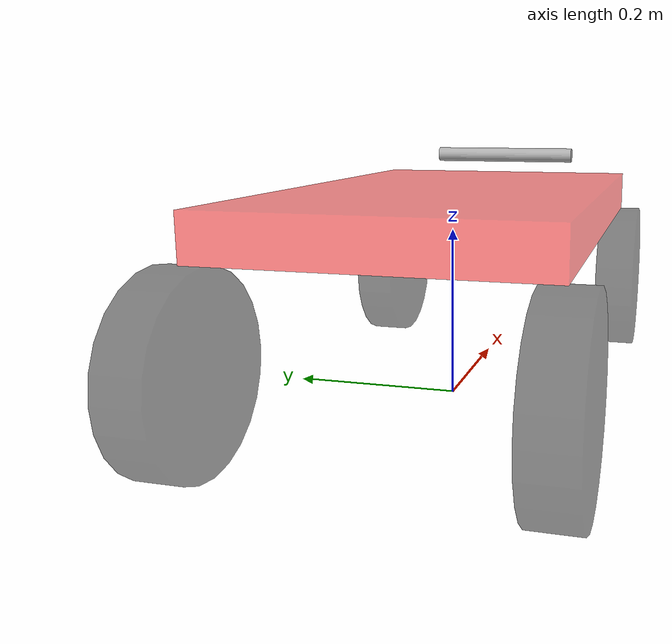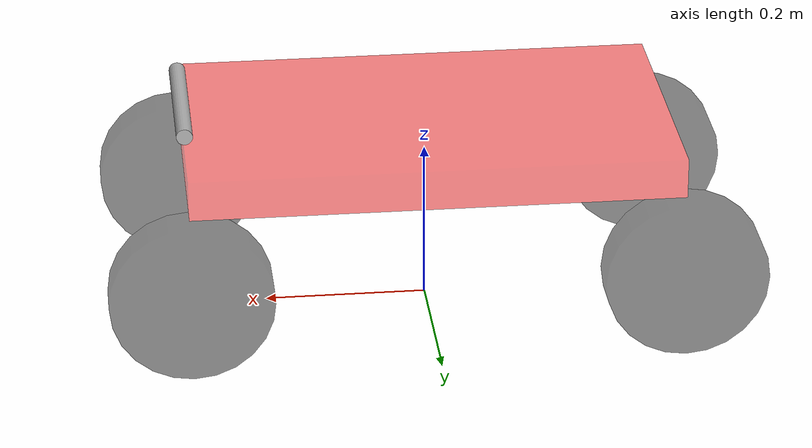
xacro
<?xml version="1.0"?>
<robot name="ackermann" xmlns:xacro="http://ros.org/wiki/xacro">

  <xacro:include filename="params.xacro"/>

  <material name="red">
    <color rgba="1.0 0 0 0.5"/>
  </material>

  <material name="blue">
    <color rgba="0 0 1.0 0.5"/>
  </material>

  <material name="rubber">
    <color rgba="0 0 0 0.5"/>
  </material>

  <link name="base_link">
    <visual>
      <origin xyz="0.0 0.0 ${wheelrad + 0.125}"/>
      <geometry>
        <box size="${lenght} ${width} ${height}"/>
      </geometry>
      <material name="red"/>
    </visual>
    <collision>
      <origin xyz="0.0 0.0 ${wheelrad + 0.125}"/>
      <geometry>
        <box size="${lenght} ${width} ${height}"/>
      </geometry>
    </collision>
    <xacro:default_inertial mass="1"/>
  </link>

  <xacro:macro name="base" params="prefix reflect">

    <link name="${prefix}_direction">
      <visual>
        <origin xyz="0.0 0.0 0.0"/>
        <geometry>
          <sphere radius="${directionrad}"/>
        </geometry>
        <material name="blue"/>
      </visual>
      <xacro:default_inertial mass="1"/>
    </link>

    <link name="${prefix}_wheel">
      <visual>
        <geometry>
          <cylinder radius="${wheelrad}" length="${wheelrad/2}"/>
        </geometry>
        <origin rpy="${pi/2} 0 0"/>
        <material name="rubber"/>
      </visual>
      <collision>
        <geometry>
          <cylinder radius="${wheelrad}" length="${wheelrad/2}"/>
        </geometry>
        <origin rpy="${pi/2} 0 0"/>
      </collision>
      <xacro:cylinder_inertia m="0.1" r="${wheelrad}" h="${wheelrad/2}"/>
    </link>

    <link name="${prefix}_wheel_back">
      <visual>
        <geometry>
          <cylinder radius="${wheelrad}" length="${wheelrad/2}"/>
        </geometry>
        <origin rpy="${pi/2} 0 0"/>
        <material name="rubber"/>
      </visual>
      <collision>
        <geometry>
          <cylinder radius="${wheelrad}" length="${wheelrad/2}"/>
        </geometry>
        <origin rpy="${pi/2} 0 0"/>
      </collision>
      <xacro:cylinder_inertia m="0.1" r="${wheelrad}" h="${wheelrad/2}"/>
    </link>

    <joint name="base_link-${prefix}_direction_joint" type="revolute">
      <axis xyz="0 0 1" />
      <parent link="base_link"/>
      <child link="${prefix}_direction"/>
      <origin xyz="${lenght/2} ${(width/2)*reflect} ${wheelrad}"/>
      <limit lower="${-pi/2.5}" upper="${pi/2.5}" effort="100" velocity="100"/>
    </joint>

    <joint name="${prefix}_direction-${prefix}_wheel" type="continuous">
        <axis xyz="0.0 1 0.0"/>
        <parent link="${prefix}_direction"/>
        <child link="${prefix}_wheel"/>
        <origin xyz="0.0 0.0 0.0"/>
      </joint>

    <joint name="base_link-${prefix}_wheel_back_joint" type="continuous">
        <axis xyz="0 1 0"/>
        <parent link="base_link"/>
        <child link="${prefix}_wheel_back"/>
        <origin xyz="-${lenght/2} ${(width/2)*reflect} ${wheelrad}"/>
    </joint>

  </xacro:macro>

  <xacro:base prefix="left" reflect="1" />
  <xacro:base prefix="right" reflect="-1" />

  <link name="steering">
    <visual>
      <geometry>
        <cylinder radius="0.01" length="0.2"/>
      </geometry>
      <origin xyz="0.0 0.0 0.0" rpy="${pi/2} 0.0 0.0"/>
    </visual>
    <collision>
      <geometry>
        <cylinder radius="0.01" length="0.2"/>
      </geometry>
      <origin xyz="0.0 0.0 0.0" rpy="${pi/2} 0.0 0.0"/>
    </collision>
    <xacro:default_inertial mass="1"/>
  </link>

  <joint name="steering_joint" type="revolute">
    <parent link="base_link"/>
    <child link="steering"/>
    <axis xyz="0.0 0.0 1.0"/>
    <limit lower="${-pi/2.5}" upper="${pi/2.5}" effort="100" velocity="100"/>
    <origin xyz="${lenght/2} 0.0 ${height+2*wheelrad+2*directionrad}" rpy="0.0 0.0 0.0"/>
  </joint>

  <xacro:include filename="gazebo.xacro"/>

</robot>

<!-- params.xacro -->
<robot name="ackermann" xmlns:xacro="http://ros.org/wiki/xacro">

  <xacro:property name="lenght" value="0.6" />
  <xacro:property name="width" value="0.35" />
  <xacro:property name="height" value="0.05" />
  <xacro:property name="wheelrad" value="0.1" />
  <xacro:property name="directionrad" value="0.0125" />

  <xacro:macro name="default_inertial" params="mass">
    <inertial>
      <mass value="${mass}" />
      <inertia ixx="1e-3" ixy="0.0" ixz="0.0" iyy="1e-3" iyz="0.0" izz="1e-3" />
    </inertial>
  </xacro:macro>

  <xacro:macro name="cylinder_inertia" params="m r h">
    <inertial>
      <origin xyz="0 0 0" rpy="${pi/2} 0 0" />
      <mass value="${m}"/>
      <inertia ixx="${(m/12) * (3*r*r + h*h)}" ixy = "0" ixz = "0" iyy="${(m/12) * (3*r*r + h*h)}" iyz = "0" izz="${(m/2) * (r*r)}"/>
    </inertial>
  </xacro:macro>

</robot>
